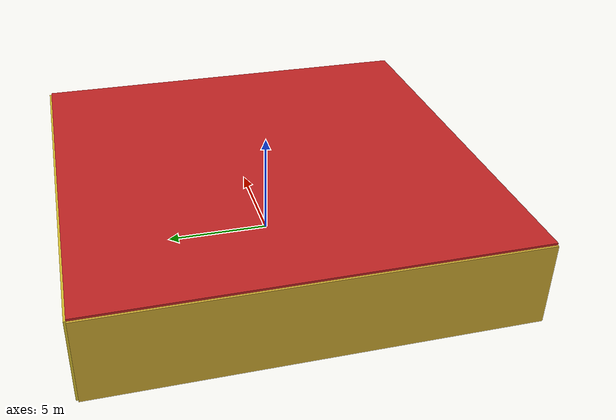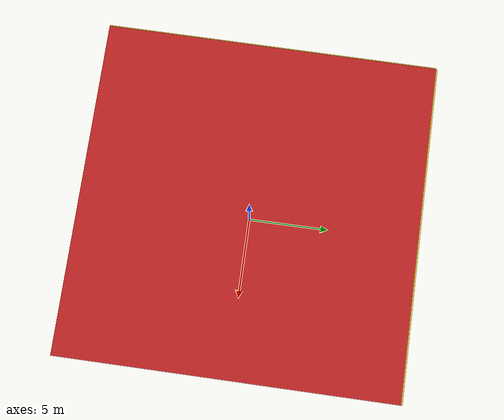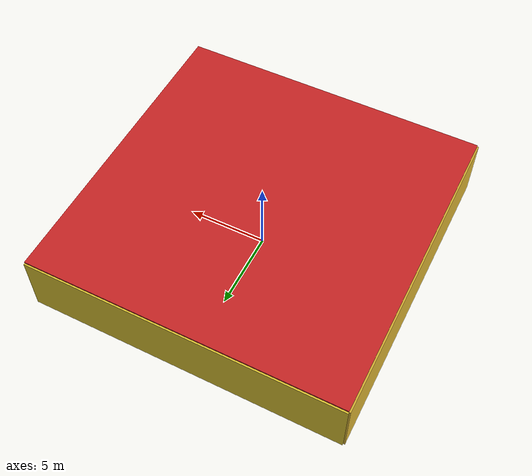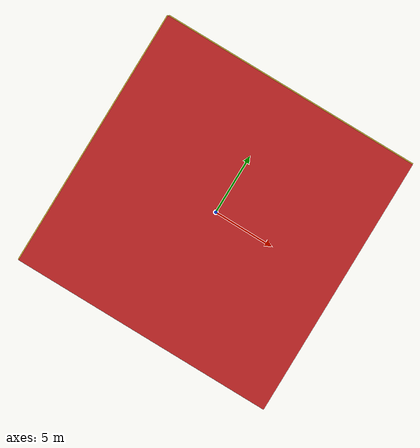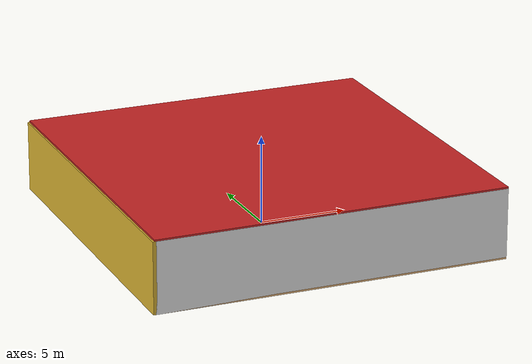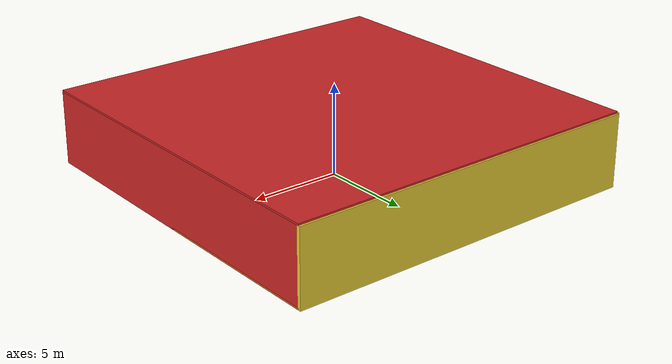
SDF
<sdf version="1.4">
 <world name="default">
  <physics type="ode">
   <max_step_size>0.001</max_step_size>
   <real_time_factor>1</real_time_factor>
   <real_time_update_rate>1000</real_time_update_rate>
   <gravity>0 0 -9.8</gravity>
  </physics>
  <scene><ambient>0.4 0.4 0.4 1</ambient><background>0.7 0.7 0.7 1</background><shadows>1</shadows></scene>
  <model name="Surrounding">
   <static>1</static>
   <link name="Ceiling">
    <collision name="Ceiling_Collision"><geometry><box><size>20 20 0.1</size></box></geometry></collision>
    <visual name="Ceiling_Visual">
     <geometry><box><size>20 20 0.1</size></box></geometry>
     <material>
      <script><uri>file://media/materials/scripts/gazebo.material</uri><name>Gazebo/RedGlow</name></script>
     </material>
    </visual>
    <pose>0 0 4.05 0 0 0</pose>
   </link>
   <link name="Wall_South">
    <collision name="Wall_South_Collision">
     <geometry><box><size>20 0 4</size></box></geometry>
     <pose>0 0 2 0 -0 0</pose>
    </collision>
    <visual name="Wall_South_Visual">
     <pose>0 0 2 0 -0 0</pose>
     <geometry><box><size>20 0 4</size></box></geometry>
     <material>
      <script><uri>file://media/materials/scripts/gazebo.material</uri><name>Gazebo/WhiteGlow</name></script>
     </material>
    </visual>
    <velocity_decay><linear>0</linear><angular>0</angular></velocity_decay>
    <pose>0 -10 0 0 -0 0</pose>
   </link>
   <link name="Wall_East">
    <collision name="Wall_21_Collision">
     <geometry><box><size>20 0 4</size></box></geometry>
     <pose>0 0 2 0 -0 0</pose>
    </collision>
    <visual name="Wall_21_Visual">
     <pose>0 0 2 0 -0 0</pose>
     <geometry><box><size>20 0 4</size></box></geometry>
     <material>
      <script><uri>file://media/materials/scripts/gazebo.material</uri><name>Gazebo/Red</name></script>
     </material>
    </visual>
    <velocity_decay><linear>0</linear><angular>0</angular></velocity_decay>
    <pose>10 0 0 0 -0 1.5708</pose>
   </link>
   <link name="Wall_North">
    <collision name="Wall_22_Collision">
     <geometry><box><size>20 0.2 4</size></box></geometry>
     <pose>0 0 2 0 -0 0</pose>
    </collision>
    <visual name="Wall_22_Visual">
     <pose>0 0 2 0 -0 0</pose>
     <geometry><box><size>20 0.2 4</size></box></geometry>
     <material>
      <script><uri>file://media/materials/scripts/gazebo.material</uri><name>Gazebo/ZincYellow</name></script>
     </material>
    </visual>
    <velocity_decay><linear>0</linear><angular>0</angular></velocity_decay>
    <pose>0 10 0 0 -0 0</pose>
   </link>
   <link name="Wall_West">
    <collision name="Wall_23_Collision">
     <geometry><box><size>20 0.2 4</size></box></geometry>
     <pose>0 0 2 0 -0 0</pose>
    </collision>
    <visual name="Wall_23_Visual">
     <pose>0 0 2 0 -0 0</pose>
     <geometry><box><size>20 0.2 4</size></box></geometry>
     <material>
      <script><uri>file://media/materials/scripts/gazebo.material</uri><name>Gazebo/Gold</name></script>
     </material>
    </visual>
    <velocity_decay><linear>0</linear><angular>0</angular></velocity_decay>
    <pose>-10 0 0 0 0 -1.5708</pose>
   </link>
   <link name="Ground_link">
    <collision name="collision">
     <pose>0 0 .05 0 -0 0</pose>
     <geometry><box><size>20 20 0.1</size></box></geometry>
    </collision>
    <visual name="visual">
     <pose>0 0 .05 0 -0 0</pose>
     <geometry><box><size>20 20 0.1</size></box></geometry>
     <material>
      <script>
       <uri>file://media/materials/scripts/gazebo.material</uri>
       <name>Gazebo/OrangeTransparent</name>
      </script>
     </material>
    </visual>
   </link>
   <static>1</static>
  </model>
  <spherical_coordinates>
   <surface_model>EARTH_WGS84</surface_model>
   <latitude_deg>0</latitude_deg>
   <longitude_deg>0</longitude_deg>
   <elevation>0</elevation>
   <heading_deg>0</heading_deg>
  </spherical_coordinates>
  <light name="lightball_0" type="diffuse">
   <diffuse>0.8 0.8 0.8 1</diffuse>
   <specular>0.2 0.2 0.2 1</specular>
   <attenuation>
    <range>100</range>
    <constant>0.7</constant>
    <linear>0.01</linear>
    <quadratic>0.001</quadratic>
   </attenuation>
   <direction>-0.5 0.1 -0.9</direction>
   <pose>-6.36900344968 6.56536137116 1.09247488635 0 0 0</pose>
  </light>
  <light name="lightball_1" type="diffuse">
   <diffuse>0.8 0.8 0.8 1</diffuse>
   <specular>0.2 0.2 0.2 1</specular>
   <attenuation>
    <range>100</range>
    <constant>0.7</constant>
    <linear>0.01</linear>
    <quadratic>0.001</quadratic>
   </attenuation>
   <direction>-0.5 0.1 -0.9</direction>
   <pose>-0.044591516632 -9.73469872137 3.27825765976 0 0 0</pose>
  </light>
  <light name="lightball_2" type="diffuse">
   <diffuse>0.8 0.8 0.8 1</diffuse>
   <specular>0.2 0.2 0.2 1</specular>
   <attenuation>
    <range>100</range>
    <constant>0.7</constant>
    <linear>0.01</linear>
    <quadratic>0.001</quadratic>
   </attenuation>
   <direction>-0.5 0.1 -0.9</direction>
   <pose>-0.841460897009 -7.77106391124 2.39417167293 0 0 0</pose>
  </light>
  <include>
   <uri>model://construction_cone</uri>
   <pose>-6.99940198657 -6.32924873245 0 0 0 1.94564911337</pose>
  </include>
  <include>
   <uri>model://construction_cone</uri>
   <pose>-6.79906279525 2.45945253724 0 0 0 2.17018840523</pose>
  </include>
  <include><uri>model://table</uri><pose>0.300293579776 -1.19454778578 0 0 0 2.06758030203</pose></include>
  <include><uri>model://table</uri><pose>2.6864008948 2.02557193789 0 0 0 0.56283859719</pose></include>
  <include><uri>model://table</uri><pose>6.43871280196 -7.91153113254 0 0 0 0.965795979874</pose></include>
 </world>
</sdf>

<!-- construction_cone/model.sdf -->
<sdf version="1.5">
  <model name="Construction Cone">
    <link name="link">
      <collision name="collision">
        <geometry>
          <mesh>
            <scale>10 10 10</scale>
            <uri>file://isr-testbed/construction_cone/meshes/construction_cone.dae</uri>
          </mesh>
        </geometry>
      </collision>
      <visual name="visual">
        <geometry>
          <mesh>
            <scale>10 10 10</scale>
            <uri>file://isr-testbed/construction_cone/meshes/construction_cone.dae</uri>
          </mesh>
        </geometry>
      </visual>
    </link>
  </model>
</sdf>

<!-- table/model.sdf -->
<sdf version="1.5">
  <model name="table">
    <static>true</static>
    <link name="link">
      <collision name="surface">
        <pose>0 0 1.0 0 0 0</pose>
        <geometry>
          <box>
            <size>1.5 0.8 0.03</size>
          </box>
        </geometry>
        <surface>
          <friction>
            <ode>
              <mu>0.6</mu>
              <mu2>0.6</mu2>
            </ode>
          </friction>
        </surface>
      </collision>
      <visual name="visual1">
        <pose>0 0 1.0 0 0 0</pose>
        <geometry>
          <box>
            <size>1.5 0.8 0.03</size>
          </box>
        </geometry>
        <material>
          <script>
            <uri>model://media/materials/scripts/gazebo.material</uri>
            <name>Gazebo/Wood</name>
          </script>
        </material>
      </visual>
      <collision name="front_left_leg">
        <pose>0.68 0.38 0.5 0 0 0</pose>
        <geometry>
          <cylinder>
            <radius>0.02</radius>
            <length>1.0</length>
          </cylinder>
        </geometry>
      </collision>
      <visual name="front_left_leg">
        <pose>0.68 0.38 0.5 0 0 0</pose>
        <geometry>
          <cylinder>
            <radius>0.02</radius>
            <length>1.0</length>
          </cylinder>
        </geometry>
        <material>
          <script>
            <uri>model://media/materials/scripts/gazebo.material</uri>
            <name>Gazebo/Grey</name>
          </script>
        </material>
      </visual>
      <collision name="front_right_leg">
        <pose>0.68 -0.38 0.5 0 0 0</pose>
        <geometry>
          <cylinder>
            <radius>0.02</radius>
            <length>1.0</length>
          </cylinder>
        </geometry>
      </collision>
      <visual name="front_right_leg">
        <pose>0.68 -0.38 0.5 0 0 0</pose>
        <geometry>
          <cylinder>
            <radius>0.02</radius>
            <length>1.0</length>
          </cylinder>
        </geometry>
        <material>
          <script>
            <uri>model://media/materials/scripts/gazebo.material</uri>
            <name>Gazebo/Grey</name>
          </script>
        </material>
      </visual>
      <collision name="back_right_leg">
        <pose>-0.68 -0.38 0.5 0 0 0</pose>
        <geometry>
          <cylinder>
            <radius>0.02</radius>
            <length>1.0</length>
          </cylinder>
        </geometry>
      </collision>
      <visual name="back_right_leg">
        <pose>-0.68 -0.38 0.5 0 0 0</pose>
        <geometry>
          <cylinder>
            <radius>0.02</radius>
            <length>1.0</length>
          </cylinder>
        </geometry>
        <material>
          <script>
            <uri>model://media/materials/scripts/gazebo.material</uri>
            <name>Gazebo/Grey</name>
          </script>
        </material>
      </visual>
      <collision name="back_left_leg">
        <pose>-0.68 0.38 0.5 0 0 0</pose>
        <geometry>
          <cylinder>
            <radius>0.02</radius>
            <length>1.0</length>
          </cylinder>
        </geometry>
      </collision>
      <visual name="back_left_leg">
        <pose>-0.68 0.38 0.5 0 0 0</pose>
        <geometry>
          <cylinder>
            <radius>0.02</radius>
            <length>1.0</length>
          </cylinder>
        </geometry>
        <material>
          <script>
            <uri>model://media/materials/scripts/gazebo.material</uri>
            <name>Gazebo/Grey</name>
          </script>
        </material>
      </visual>
    </link>
  </model>
</sdf>
